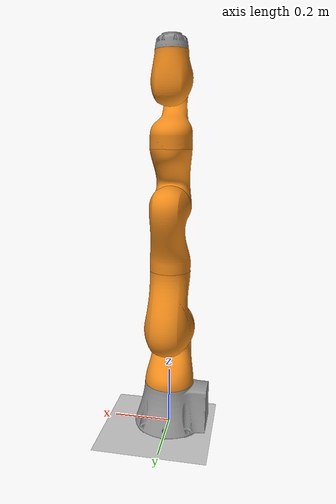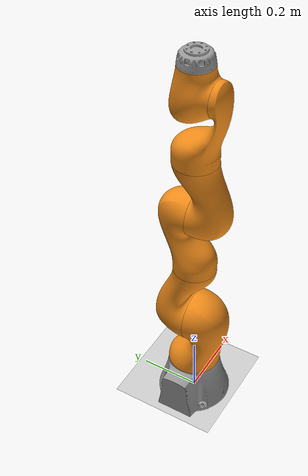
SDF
<sdf version="1.7">
 <world name="default">
  <model name="ground_plane">
   <static>1</static>
   <link name="link">
    <collision name="collision">
     <geometry><plane><normal>0 0 1</normal><size>100 100</size></plane></geometry>
     <surface><friction><ode><mu>100</mu><mu2>50</mu2></ode></friction></surface>
    </collision>
    <visual name="visual">
     <cast_shadows>0</cast_shadows>
     <geometry><plane><normal>0 0 1</normal><size>100 100</size></plane></geometry>
     <material>
      <script><uri>file://media/materials/scripts/gazebo.material</uri><name>Gazebo/Grey</name></script>
     </material>
    </visual>
   </link>
  </model>
  <light name="sun" type="directional">
   <pose>0 0 10 0 -0 0</pose>
   <diffuse>0.8 0.8 0.8 1</diffuse>
   <specular>0.2 0.2 0.2 1</specular>
   <attenuation>
    <range>1000</range>
    <constant>0.9</constant>
    <linear>0.01</linear>
    <quadratic>0.001</quadratic>
   </attenuation>
   <direction>-0.5 0.1 -0.9</direction>
   <spot><inner_angle>0</inner_angle><outer_angle>0</outer_angle><falloff>0</falloff></spot>
  </light>
  <physics name="default_physics" default="0" type="ode">
   <max_step_size>0.01</max_step_size>
   <real_time_factor>1</real_time_factor>
   <real_time_update_rate>100</real_time_update_rate>
   <ode>
    <solver>
     <type>quick</type>
     <iters>50</iters>
     <sor>1</sor>
     <use_dynamic_moi_rescaling>0</use_dynamic_moi_rescaling>
    </solver>
    <constraints>
     <cfm>0</cfm>
     <erp>0.2</erp>
     <contact_max_correcting_vel>100</contact_max_correcting_vel>
     <contact_surface_layer>0.001</contact_surface_layer>
    </constraints>
   </ode>
  </physics>
  <gravity>0 0 -9.8</gravity>
  <magnetic_field>6e-06 2.3e-05 -4.2e-05</magnetic_field>
  <atmosphere type="adiabatic"/>
  <scene><ambient>0.4 0.4 0.4 1</ambient><background>0.7 0.7 0.7 1</background><shadows>1</shadows></scene>
  <spherical_coordinates>
   <surface_model>EARTH_WGS84</surface_model>
   <latitude_deg>0</latitude_deg>
   <longitude_deg>0</longitude_deg>
   <elevation>0</elevation>
   <heading_deg>0</heading_deg>
  </spherical_coordinates>
  <model name="iiwa">
   <joint name="world_iiwa_joint" type="fixed">
    <pose relative_to="__model__">0 0 0 0 -0 0</pose>
    <parent>world</parent>
    <child>iiwa_link_0</child>
   </joint>
   <link name="iiwa_link_0">
    <pose relative_to="world_iiwa_joint">0 0 0 0 -0 0</pose>
    <inertial>
     <pose>-0.1 0 0.07 0 -0 0</pose>
     <mass>5</mass>
     <inertia><ixx>0.05</ixx><ixy>0</ixy><ixz>0</ixz><iyy>0.06</iyy><iyz>0</iyz><izz>0.03</izz></inertia>
    </inertial>
    <collision name="iiwa_link_0_collision">
     <geometry>
      <mesh>
       <scale>1 1 1</scale>
       <uri>/home/kaan/summer_ws/src/iiwa_stack/iiwa_description/meshes/iiwa14/collision/link_0.stl</uri>
      </mesh>
     </geometry>
     <surface><friction><ode><mu>0.2</mu><mu2>0.2</mu2></ode></friction></surface>
    </collision>
    <visual name="iiwa_link_0_visual">
     <geometry>
      <mesh>
       <scale>1 1 1</scale>
       <uri>/home/kaan/summer_ws/src/iiwa_stack/iiwa_description/meshes/iiwa14/visual/link_0.stl</uri>
      </mesh>
     </geometry>
     <material>
      <script><name>Gazebo/Grey</name><uri>file://media/materials/scripts/gazebo.material</uri></script>
     </material>
    </visual>
   </link>
   <joint name="iiwa_joint_1" type="revolute">
    <pose relative_to="iiwa_link_0">0 0 0.1575 0 -0 0</pose>
    <parent>iiwa_link_0</parent>
    <child>iiwa_link_1</child>
    <axis>
     <xyz>0 0 1</xyz>
     <limit><lower>-2.96706</lower><upper>2.96706</upper><effort>300</effort><velocity>10</velocity></limit>
     <dynamics>
      <damping>0.5</damping>
      <friction>0</friction>
      <spring_reference>0</spring_reference>
      <spring_stiffness>0</spring_stiffness>
     </dynamics>
    </axis>
   </joint>
   <link name="iiwa_link_1">
    <pose relative_to="iiwa_joint_1">0 0 0 0 -0 0</pose>
    <inertial>
     <pose>0 -0.03 0.12 0 -0 0</pose>
     <mass>4</mass>
     <inertia><ixx>0.1</ixx><ixy>0</ixy><ixz>0</ixz><iyy>0.09</iyy><iyz>0</iyz><izz>0.02</izz></inertia>
    </inertial>
    <collision name="iiwa_link_1_collision">
     <geometry>
      <mesh>
       <scale>1 1 1</scale>
       <uri>/home/kaan/summer_ws/src/iiwa_stack/iiwa_description/meshes/iiwa14/collision/link_1.stl</uri>
      </mesh>
     </geometry>
     <surface><friction><ode><mu>0.2</mu><mu2>0.2</mu2></ode></friction></surface>
    </collision>
    <visual name="iiwa_link_1_visual">
     <geometry>
      <mesh>
       <scale>1 1 1</scale>
       <uri>/home/kaan/summer_ws/src/iiwa_stack/iiwa_description/meshes/iiwa14/visual/link_1.stl</uri>
      </mesh>
     </geometry>
     <material>
      <script><name>Gazebo/Orange</name><uri>file://media/materials/scripts/gazebo.material</uri></script>
     </material>
    </visual>
   </link>
   <joint name="iiwa_joint_2" type="revolute">
    <pose relative_to="iiwa_link_1">0 0 0.2025 1.5708 -0 3.14159</pose>
    <parent>iiwa_link_1</parent>
    <child>iiwa_link_2</child>
    <axis>
     <xyz>0 0 1</xyz>
     <limit><lower>-2.0944</lower><upper>2.0944</upper><effort>300</effort><velocity>10</velocity></limit>
     <dynamics>
      <damping>0.5</damping>
      <friction>0</friction>
      <spring_reference>0</spring_reference>
      <spring_stiffness>0</spring_stiffness>
     </dynamics>
    </axis>
   </joint>
   <link name="iiwa_link_2">
    <pose relative_to="iiwa_joint_2">0 0 0 0 -0 0</pose>
    <inertial>
     <pose>0.0003 0.059 0.042 0 -0 0</pose>
     <mass>4</mass>
     <inertia><ixx>0.05</ixx><ixy>0</ixy><ixz>0</ixz><iyy>0.018</iyy><iyz>0</iyz><izz>0.044</izz></inertia>
    </inertial>
    <collision name="iiwa_link_2_collision">
     <geometry>
      <mesh>
       <scale>1 1 1</scale>
       <uri>/home/kaan/summer_ws/src/iiwa_stack/iiwa_description/meshes/iiwa14/collision/link_2.stl</uri>
      </mesh>
     </geometry>
     <surface><friction><ode><mu>0.2</mu><mu2>0.2</mu2></ode></friction></surface>
    </collision>
    <visual name="iiwa_link_2_visual">
     <geometry>
      <mesh>
       <scale>1 1 1</scale>
       <uri>/home/kaan/summer_ws/src/iiwa_stack/iiwa_description/meshes/iiwa14/visual/link_2.stl</uri>
      </mesh>
     </geometry>
     <material>
      <script><name>Gazebo/Orange</name><uri>file://media/materials/scripts/gazebo.material</uri></script>
     </material>
    </visual>
   </link>
   <joint name="iiwa_joint_3" type="revolute">
    <pose relative_to="iiwa_link_2">0 0.2045 0 1.5708 -0 3.14159</pose>
    <parent>iiwa_link_2</parent>
    <child>iiwa_link_3</child>
    <axis>
     <xyz>0 0 1</xyz>
     <limit><lower>-2.96706</lower><upper>2.96706</upper><effort>300</effort><velocity>10</velocity></limit>
     <dynamics>
      <damping>0.5</damping>
      <friction>0</friction>
      <spring_reference>0</spring_reference>
      <spring_stiffness>0</spring_stiffness>
     </dynamics>
    </axis>
   </joint>
   <link name="iiwa_link_3">
    <pose relative_to="iiwa_joint_3">0 0 0 0 -0 0</pose>
    <inertial>
     <pose>0 0.03 0.13 0 -0 0</pose>
     <mass>3</mass>
     <inertia><ixx>0.08</ixx><ixy>0</ixy><ixz>0</ixz><iyy>0.075</iyy><iyz>0</iyz><izz>0.01</izz></inertia>
    </inertial>
    <collision name="iiwa_link_3_collision">
     <geometry>
      <mesh>
       <scale>1 1 1</scale>
       <uri>/home/kaan/summer_ws/src/iiwa_stack/iiwa_description/meshes/iiwa14/collision/link_3.stl</uri>
      </mesh>
     </geometry>
     <surface><friction><ode><mu>0.2</mu><mu2>0.2</mu2></ode></friction></surface>
    </collision>
    <visual name="iiwa_link_3_visual">
     <geometry>
      <mesh>
       <scale>1 1 1</scale>
       <uri>/home/kaan/summer_ws/src/iiwa_stack/iiwa_description/meshes/iiwa14/visual/link_3.stl</uri>
      </mesh>
     </geometry>
     <material>
      <script><name>Gazebo/Orange</name><uri>file://media/materials/scripts/gazebo.material</uri></script>
     </material>
    </visual>
   </link>
   <joint name="iiwa_joint_4" type="revolute">
    <pose relative_to="iiwa_link_3">0 0 0.2155 1.5708 -0 0</pose>
    <parent>iiwa_link_3</parent>
    <child>iiwa_link_4</child>
    <axis>
     <xyz>0 0 1</xyz>
     <limit><lower>-2.0944</lower><upper>2.0944</upper><effort>300</effort><velocity>10</velocity></limit>
     <dynamics>
      <damping>0.5</damping>
      <friction>0</friction>
      <spring_reference>0</spring_reference>
      <spring_stiffness>0</spring_stiffness>
     </dynamics>
    </axis>
   </joint>
   <link name="iiwa_link_4">
    <pose relative_to="iiwa_joint_4">0 0 0 0 -0 0</pose>
    <inertial>
     <pose>0 0.067 0.034 0 -0 0</pose>
     <mass>2.7</mass>
     <inertia><ixx>0.03</ixx><ixy>0</ixy><ixz>0</ixz><iyy>0.01</iyy><iyz>0</iyz><izz>0.029</izz></inertia>
    </inertial>
    <collision name="iiwa_link_4_collision">
     <geometry>
      <mesh>
       <scale>1 1 1</scale>
       <uri>/home/kaan/summer_ws/src/iiwa_stack/iiwa_description/meshes/iiwa14/collision/link_4.stl</uri>
      </mesh>
     </geometry>
     <surface><friction><ode><mu>0.2</mu><mu2>0.2</mu2></ode></friction></surface>
    </collision>
    <visual name="iiwa_link_4_visual">
     <geometry>
      <mesh>
       <scale>1 1 1</scale>
       <uri>/home/kaan/summer_ws/src/iiwa_stack/iiwa_description/meshes/iiwa14/visual/link_4.stl</uri>
      </mesh>
     </geometry>
     <material>
      <script><name>Gazebo/Orange</name><uri>file://media/materials/scripts/gazebo.material</uri></script>
     </material>
    </visual>
   </link>
   <joint name="iiwa_joint_5" type="revolute">
    <pose relative_to="iiwa_link_4">0 0.1845 0 1.5708 -0 3.14159</pose>
    <parent>iiwa_link_4</parent>
    <child>iiwa_link_5</child>
    <axis>
     <xyz>0 0 1</xyz>
     <limit><lower>-2.96706</lower><upper>2.96706</upper><effort>300</effort><velocity>10</velocity></limit>
     <dynamics>
      <damping>0.5</damping>
      <friction>0</friction>
      <spring_reference>0</spring_reference>
      <spring_stiffness>0</spring_stiffness>
     </dynamics>
    </axis>
   </joint>
   <link name="iiwa_link_5">
    <pose relative_to="iiwa_joint_5">0 0 0 0 -0 0</pose>
    <inertial>
     <pose>0.0001 0.021 0.076 0 -0 0</pose>
     <mass>1.7</mass>
     <inertia><ixx>0.02</ixx><ixy>0</ixy><ixz>0</ixz><iyy>0.018</iyy><iyz>0</iyz><izz>0.005</izz></inertia>
    </inertial>
    <collision name="iiwa_link_5_collision">
     <geometry>
      <mesh>
       <scale>1 1 1</scale>
       <uri>/home/kaan/summer_ws/src/iiwa_stack/iiwa_description/meshes/iiwa14/collision/link_5.stl</uri>
      </mesh>
     </geometry>
     <surface><friction><ode><mu>0.2</mu><mu2>0.2</mu2></ode></friction></surface>
    </collision>
    <visual name="iiwa_link_5_visual">
     <geometry>
      <mesh>
       <scale>1 1 1</scale>
       <uri>/home/kaan/summer_ws/src/iiwa_stack/iiwa_description/meshes/iiwa14/visual/link_5.stl</uri>
      </mesh>
     </geometry>
     <material>
      <script><name>Gazebo/Orange</name><uri>file://media/materials/scripts/gazebo.material</uri></script>
     </material>
    </visual>
   </link>
   <joint name="iiwa_joint_6" type="revolute">
    <pose relative_to="iiwa_link_5">0 0 0.2155 1.5708 -0 0</pose>
    <parent>iiwa_link_5</parent>
    <child>iiwa_link_6</child>
    <axis>
     <xyz>0 0 1</xyz>
     <limit><lower>-2.0944</lower><upper>2.0944</upper><effort>300</effort><velocity>10</velocity></limit>
     <dynamics>
      <damping>0.5</damping>
      <friction>0</friction>
      <spring_reference>0</spring_reference>
      <spring_stiffness>0</spring_stiffness>
     </dynamics>
    </axis>
   </joint>
   <link name="iiwa_link_6">
    <pose relative_to="iiwa_joint_6">0 0 0 0 -0 0</pose>
    <inertial>
     <pose>0 0.0006 0.0004 0 -0 0</pose>
     <mass>1.8</mass>
     <inertia><ixx>0.005</ixx><ixy>0</ixy><ixz>0</ixz><iyy>0.0036</iyy><iyz>0</iyz><izz>0.0047</izz></inertia>
    </inertial>
    <collision name="iiwa_link_6_collision">
     <geometry>
      <mesh>
       <scale>1 1 1</scale>
       <uri>/home/kaan/summer_ws/src/iiwa_stack/iiwa_description/meshes/iiwa14/collision/link_6.stl</uri>
      </mesh>
     </geometry>
     <surface><friction><ode><mu>0.2</mu><mu2>0.2</mu2></ode></friction></surface>
    </collision>
    <visual name="iiwa_link_6_visual">
     <geometry>
      <mesh>
       <scale>1 1 1</scale>
       <uri>/home/kaan/summer_ws/src/iiwa_stack/iiwa_description/meshes/iiwa14/visual/link_6.stl</uri>
      </mesh>
     </geometry>
     <material>
      <script><name>Gazebo/Orange</name><uri>file://media/materials/scripts/gazebo.material</uri></script>
     </material>
    </visual>
   </link>
   <joint name="iiwa_joint_7" type="revolute">
    <pose relative_to="iiwa_link_6">0 0.081 0 1.5708 -0 3.14159</pose>
    <parent>iiwa_link_6</parent>
    <child>iiwa_link_7</child>
    <axis>
     <xyz>0 0 1</xyz>
     <limit><lower>-3.05433</lower><upper>3.05433</upper><effort>300</effort><velocity>10</velocity></limit>
     <dynamics>
      <damping>0.5</damping>
      <friction>0</friction>
      <spring_reference>0</spring_reference>
      <spring_stiffness>0</spring_stiffness>
     </dynamics>
    </axis>
    <physics>
     <provide_feedback>1</provide_feedback>
     <ode><limit><cfm>0</cfm><erp>0.2</erp></limit><provide_feedback>1</provide_feedback></ode>
    </physics>
   </joint>
   <link name="iiwa_link_7">
    <pose relative_to="iiwa_joint_7">0 0 0 0 -0 0</pose>
    <inertial>
     <pose>0 0 0.02 0 -0 0</pose>
     <mass>0.3</mass>
     <inertia><ixx>0.001</ixx><ixy>0</ixy><ixz>0</ixz><iyy>0.001</iyy><iyz>0</iyz><izz>0.001</izz></inertia>
    </inertial>
    <collision name="iiwa_link_7_collision">
     <geometry>
      <mesh>
       <scale>1 1 1</scale>
       <uri>/home/kaan/summer_ws/src/iiwa_stack/iiwa_description/meshes/iiwa14/collision/link_7.stl</uri>
      </mesh>
     </geometry>
     <surface><friction><ode><mu>0.2</mu><mu2>0.2</mu2></ode></friction></surface>
    </collision>
    <visual name="iiwa_link_7_visual">
     <geometry>
      <mesh>
       <scale>1 1 1</scale>
       <uri>/home/kaan/summer_ws/src/iiwa_stack/iiwa_description/meshes/iiwa14/visual/link_7.stl</uri>
      </mesh>
     </geometry>
     <material>
      <script><name>Gazebo/Grey</name><uri>file://media/materials/scripts/gazebo.material</uri></script>
     </material>
    </visual>
   </link>
   <plugin name="ft_sensor" filename="libgazebo_ros_ft_sensor.so">
    <updateRate>50.0</updateRate>
    <topicName>/iiwa/state/CartesianWrench</topicName>
    <jointName>iiwa_joint_7</jointName>
    <robotNamespace>/</robotNamespace>
   </plugin>
   <plugin name="gazebo_ros_control" filename="libgazebo_ros_control.so">
    <robotNamespace>/iiwa</robotNamespace>
   </plugin>
   <frame name="iiwa_joint_ee" attached_to="iiwa_link_7"><pose>0 0 0.045 0 -0 0</pose></frame>
   <frame name="iiwa_link_ee" attached_to="iiwa_joint_ee"/>
   <pose>-8e-06 0.000111 0.00145 0.000659 -0.001629 0.000167</pose>
  </model>
 </world>
</sdf>
